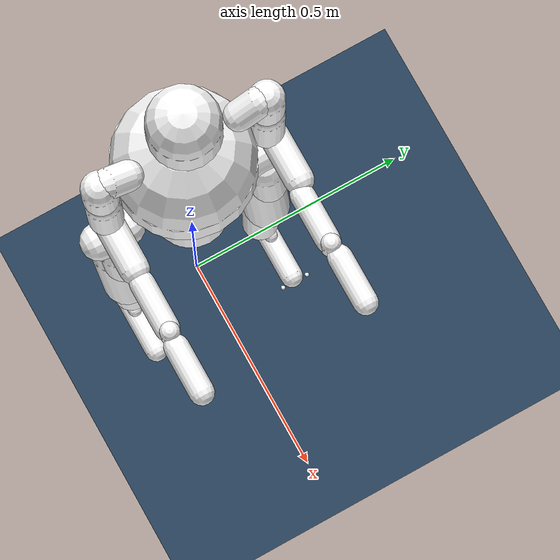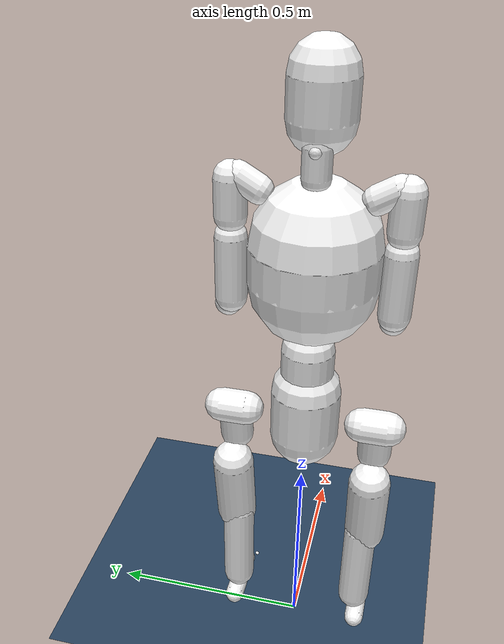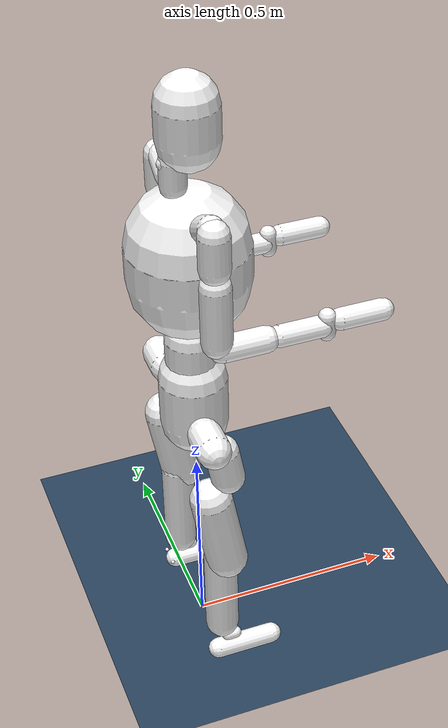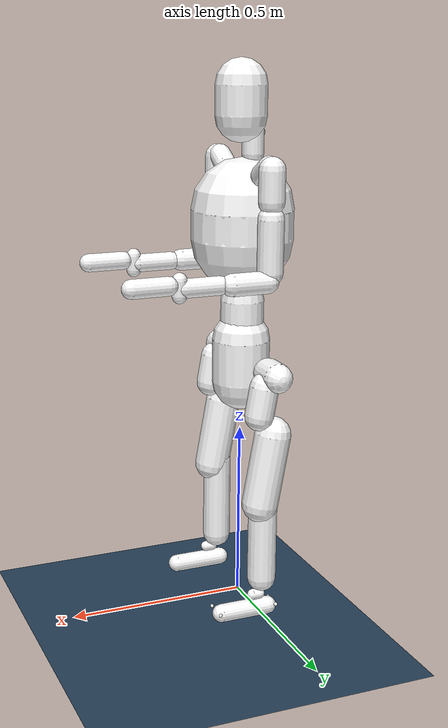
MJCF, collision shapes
<mujoco model="Taks_T1 scene">
  <include file="Taks_T1.xml"/>

  <statistic center="0 0 0.5" extent="2.0"/>

  <visual>
    <headlight diffuse="0.6 0.6 0.6" ambient="0.3 0.3 0.3" specular="0 0 0"/>
    <rgba haze="0.15 0.25 0.35 1"/>
    <global azimuth="-130" elevation="-20"/>
  </visual>

  <asset>
    <texture type="skybox" builtin="gradient" rgb1="0.3 0.5 0.7" rgb2="0 0 0" width="512" height="3072"/>
    <texture type="2d" name="groundplane" builtin="checker" mark="edge" rgb1="0.2 0.3 0.4" rgb2="0.1 0.2 0.3"
      markrgb="0.8 0.8 0.8" width="300" height="300"/>
    <material name="groundplane" texture="groundplane" texuniform="true" texrepeat="5 5" reflectance="0.2"/>
  </asset>

  <worldbody>
    <light pos="0 0 1.5" dir="0 0 -1" directional="true"/>
    <geom name="floor" size="0 0 0.05" type="plane" material="groundplane"/>
  </worldbody>
</mujoco>

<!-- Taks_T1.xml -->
<mujoco model="Taks_T1">
  <compiler angle="radian" meshdir="meshes" />

  <default>
    <default class="torso_motor">
      <joint damping="0.05" armature="0.01" frictionloss="0.2"/>
    </default>
    <default class="leg_motor">
      <joint damping="0.05" armature="0.01" frictionloss="0.2"/>
    </default>
    <default class="ankle_motor">
      <joint damping="0.05" armature="0.01" frictionloss="0.2"/>
    </default>
    <default class="arm_motor">
      <joint damping="0.05" armature="0.01" frictionloss="0.2"/>
    </default>
    <default class="wrist_motor">
      <joint damping="0.05" armature="0.01" frictionloss="0.1"/>
    </default>
    <default class="neck_motor">
      <joint damping="0.02" armature="0.005" frictionloss="0.05"/>
    </default>
  </default>

  <asset>
    <mesh name="pelvis" file="pelvis.STL" />
    <mesh name="left_hip_pitch_link" file="left_hip_pitch_link.STL" />
    <mesh name="left_hip_roll_link" file="left_hip_roll_link.STL" />
    <mesh name="left_hip_yaw_link" file="left_hip_yaw_link.STL" />
    <mesh name="left_knee_link" file="left_knee_link.STL" />
    <mesh name="left_ankle_pitch_link" file="left_ankle_pitch_link.STL" />
    <mesh name="left_ankle_roll_link" file="left_ankle_roll_link.STL" />
    <mesh name="right_hip_pitch_link" file="right_hip_pitch_link.STL" />
    <mesh name="right_hip_roll_link" file="right_hip_roll_link.STL" />
    <mesh name="right_hip_yaw_link" file="right_hip_yaw_link.STL" />
    <mesh name="right_knee_link" file="right_knee_link.STL" />
    <mesh name="right_ankle_pitch_link" file="right_ankle_pitch_link.STL" />
    <mesh name="right_ankle_roll_link" file="right_ankle_roll_link.STL" />
    <mesh name="waist_yaw_link" file="waist_yaw_link.STL" />
    <mesh name="waist_roll_link" file="waist_roll_link.STL" />
    <mesh name="waist_pitch_link" file="waist_pitch_link.STL" />
    <mesh name="left_shoulder_pitch_link" file="left_shoulder_pitch_link.STL" />
    <mesh name="left_shoulder_roll_link" file="left_shoulder_roll_link.STL" />
    <mesh name="left_shoulder_yaw_link" file="left_shoulder_yaw_link.STL" />
    <mesh name="left_elbow_link" file="left_elbow_link.STL" />
    <mesh name="left_wrist_roll_link" file="left_wrist_roll_link.STL" />
    <mesh name="left_wrist_yaw_link" file="left_wrist_yaw_link.STL" />
    <mesh name="left_wrist_pitch_link" file="left_wrist_pitch_link.STL" />
    <mesh name="right_shoulder_pitch_link" file="right_shoulder_pitch_link.STL" />
    <mesh name="right_shoulder_roll_link" file="right_shoulder_roll_link.STL" />
    <mesh name="right_shoulder_yaw_link" file="right_shoulder_yaw_link.STL" />
    <mesh name="right_elbow_link" file="right_elbow_link.STL" />
    <mesh name="right_wrist_roll_link" file="right_wrist_roll_link.STL" />
    <mesh name="right_wrist_yaw_link" file="right_wrist_yaw_link.STL" />
    <mesh name="right_wrist_pitch_link" file="right_wrist_pitch_link.STL" />
    <mesh name="neck_yaw_link" file="neck_yaw_link.STL" />
    <mesh name="neck_roll_link" file="neck_roll_link.STL" />
    <mesh name="neck_pitch_link" file="neck_pitch_link.STL" />
  </asset>

  <worldbody>
    <body name="pelvis" pos="0 0 0.75">
      <site name="imu" size="0.01" pos="0.0 0.0 0.0" />
      <inertial pos="0.0 0.0 -0.05192" mass="3.2"
        diaginertia="0.0161067 0.0106667 0.0200852" />
      <joint name="floating_base_joint" type="free" limited="false" actuatorfrclimited="false" />
      <geom type="mesh" contype="0" conaffinity="0" group="1" density="0" rgba="1.0 1.0 1.0 1"
        mesh="pelvis" />
      <!-- Pelvis capsule collision (contype=2 for torso group, conaffinity excludes self) -->
      <geom name="pelvis_collision" type="capsule" size="0.08 0.06" pos="0 0 -0.05" rgba="1.0 1.0 1.0 0.3" group="3" contype="2" conaffinity="29" />

      <!-- Left Leg -->
      <body name="left_hip_pitch_link" pos="0.0 0.115 -0.0523">
        <inertial pos="-0.02022 0.04885 -0.00359" mass="0.685"
          diaginertia="0.000776333 0.000570833 0.000936167" />
        <joint name="left_hip_pitch_joint" pos="0 0 0" axis="0 1 0" range="-2.5307 2.8798"
          actuatorfrcrange="-120 120" class="leg_motor" />
        <geom type="mesh" contype="0" conaffinity="0" group="1" density="0" rgba="1.0 1.0 1.0 1"
          mesh="left_hip_pitch_link" />
        <!-- Left hip pitch capsule collision (contype=1 for left leg) -->
        <geom name="left_hip_pitch_collision" type="capsule" size="0.04 0.03" pos="-0.02 0.05 0" quat="0.707 0.707 0 0" rgba="1.0 1.0 1.0 0.3" group="3" contype="1" conaffinity="30" />

        <body name="left_hip_roll_link" pos="0.007945 0.053348 0.001351" quat="0.996195 0 -0.0871557 0">
          <inertial pos="-0.00668 -0.00027 -0.0695" mass="0.93"
            diaginertia="0.001612 0.001612 0.000992" />
          <joint name="left_hip_roll_joint" pos="0 0 0" axis="1 0 0" range="-0.5236 2.9671"
            actuatorfrcrange="-97 97" class="leg_motor" />
          <geom type="mesh" contype="0" conaffinity="0" group="1" density="0" rgba="1.0 1.0 1.0 1"
            mesh="left_hip_roll_link" />
          <!-- Left hip roll capsule collision (contype=1 for left leg) -->
          <geom name="left_hip_roll_collision" type="capsule" size="0.04 0.04" pos="-0.007 0 -0.07" rgba="1.0 1.0 1.0 0.3" group="3" contype="1" conaffinity="30" />

          <body name="left_hip_yaw_link" pos="-0.008293 0.0 -0.10937">
            <inertial pos="-0.048416 -0.008192 -0.200621" mass="1.74"
              diaginertia="0.014616 0.014616 0.003132" />
            <joint name="left_hip_yaw_joint" pos="0 0 0" axis="0 0 1" range="-2.7576 2.7576"
              actuatorfrcrange="-97 97" class="leg_motor" />
            <geom type="mesh" contype="0" conaffinity="0" group="1" density="0" rgba="1.0 1.0 1.0 1"
              mesh="left_hip_yaw_link" />
            <!-- Left thigh capsule collision (contype=1 for left leg) -->
            <geom name="left_thigh_collision" type="capsule" size="0.05 0.1" pos="-0.05 0 -0.15" rgba="1.0 1.0 1.0 0.3" group="3" contype="1" conaffinity="30" />

            <body name="left_knee_link" pos="-0.060138 0.016849 -0.23297" quat="0.996195 0 0.0871557 0">
              <inertial pos="0.0 -0.0248 -0.115572" mass="0.63"
                diaginertia="0.004977 0.004977 0.000504" />
              <joint name="left_knee_joint" pos="0 0 0" axis="0 1 0" range="-0.087267 2.8798"
                actuatorfrcrange="-120 120" class="leg_motor" />
              <geom type="mesh" contype="0" conaffinity="0" group="1" density="0" rgba="1.0 1.0 1.0 1"
                mesh="left_knee_link" />
              <!-- Left shin capsule collision (contype=1 for left leg) -->
              <geom name="left_shin_collision" type="capsule" size="0.04 0.12" pos="0 -0.025 -0.12" rgba="1.0 1.0 1.0 0.3" group="3" contype="1" conaffinity="30" />

              <body name="left_ankle_pitch_link" pos="0.0 -0.015197 -0.28503">
                <inertial pos="0.019984 0.0 0.0" mass="0.001837"
                  diaginertia="1.6533e-07 1.6533e-07 1.6533e-07" />
                <joint name="left_ankle_pitch_joint" pos="0 0 0" axis="0 1 0"
                  range="-0.87267 0.5236" actuatorfrcrange="-27 27" class="ankle_motor" />
                <geom type="mesh" contype="0" conaffinity="0" group="1" density="0" rgba="1.0 1.0 1.0 1"
                  mesh="left_ankle_pitch_link" />
                <!-- Left ankle pitch capsule collision (contype=1 for left leg) -->
                <geom name="left_ankle_pitch_collision" type="capsule" size="0.015 0.01" pos="0.02 0 0" quat="0.707 0 0.707 0" rgba="1.0 1.0 1.0 0.3" group="3" contype="1" conaffinity="30" />

                <body name="left_ankle_roll_link" pos="0.02 0.0 0.0">
                  <inertial pos="0.025052 -0.005381 -0.04" mass="0.56"
                    diaginertia="0.000415333 0.00146533 0.00164733" />
                  <joint name="left_ankle_roll_joint" pos="0 0 0" axis="1 0 0"
                    range="-0.2618 0.2618" actuatorfrcrange="-27 27" class="ankle_motor" />
                  <geom type="mesh" contype="0" conaffinity="0" group="1" density="0" rgba="1.0 1.0 1.0 1"
                    mesh="left_ankle_roll_link" />
                  <geom size="0.005" pos="-0.05 0.025 -0.03" rgba="1.0 1.0 1.0 1" contype="0" conaffinity="0" />
                  <geom size="0.005" pos="-0.05 -0.025 -0.03" rgba="1.0 1.0 1.0 1" contype="0" conaffinity="0" />
                  <geom size="0.005" pos="0.12 0.03 -0.03" rgba="1.0 1.0 1.0 1" contype="0" conaffinity="0" />
                  <geom size="0.005" pos="0.12 -0.03 -0.03" rgba="1.0 1.0 1.0 1" contype="0" conaffinity="0" />
                  <!-- Left foot capsule collision (contype=1 for left leg) -->
                  <geom name="left_foot_collision" type="capsule" size="0.025 0.07" pos="0.035 0 -0.04" quat="0.707 0 0.707 0" rgba="1.0 1.0 1.0 0.3" group="3" contype="1" conaffinity="30" />
                </body>
              </body>
            </body>
          </body>
        </body>
      </body>

      <!-- Right Leg -->
      <body name="right_hip_pitch_link" pos="0.0 -0.115 -0.0523">
        <inertial pos="-0.02022 -0.04886 -0.00359" mass="0.685"
          diaginertia="0.000776333 0.000570833 0.000936167" />
        <joint name="right_hip_pitch_joint" pos="0 0 0" axis="0 1 0" range="-2.5307 2.8798"
          actuatorfrcrange="-120 120" class="leg_motor" />
        <geom type="mesh" contype="0" conaffinity="0" group="1" density="0" rgba="1.0 1.0 1.0 1"
          mesh="right_hip_pitch_link" />
        <!-- Right hip pitch capsule collision (contype=32 for right leg) -->
        <geom name="right_hip_pitch_collision" type="capsule" size="0.04 0.03" pos="-0.02 -0.05 0" quat="0.707 0.707 0 0" rgba="1.0 1.0 1.0 0.3" group="3" contype="32" conaffinity="31" />

        <body name="right_hip_roll_link" pos="0.007945 -0.053348 0.001351" quat="0.996195 0 -0.0871557 0">
          <inertial pos="-0.00668 0.00027 -0.0695" mass="0.93"
            diaginertia="0.001612 0.001612 0.000992" />
          <joint name="right_hip_roll_joint" pos="0 0 0" axis="1 0 0" range="-2.9671 0.5236"
            actuatorfrcrange="-97 97" class="leg_motor" />
          <geom type="mesh" contype="0" conaffinity="0" group="1" density="0" rgba="1.0 1.0 1.0 1"
            mesh="right_hip_roll_link" />
          <!-- Right hip roll capsule collision (contype=32 for right leg) -->
          <geom name="right_hip_roll_collision" type="capsule" size="0.04 0.04" pos="-0.007 0 -0.07" rgba="1.0 1.0 1.0 0.3" group="3" contype="32" conaffinity="31" />

          <body name="right_hip_yaw_link" pos="-0.008293 0.0 -0.10937">
            <inertial pos="-0.04842 0.008194 -0.200625" mass="1.74"
              diaginertia="0.014616 0.014616 0.003132" />
            <joint name="right_hip_yaw_joint" pos="0 0 0" axis="0 0 1" range="-2.7576 2.7576"
              actuatorfrcrange="-97 97" class="leg_motor" />
            <geom type="mesh" contype="0" conaffinity="0" group="1" density="0" rgba="1.0 1.0 1.0 1"
              mesh="right_hip_yaw_link" />
            <!-- Right thigh capsule collision (contype=32 for right leg) -->
            <geom name="right_thigh_collision" type="capsule" size="0.05 0.1" pos="-0.05 0 -0.15" rgba="1.0 1.0 1.0 0.3" group="3" contype="32" conaffinity="31" />

            <body name="right_knee_link" pos="-0.060138 -0.016849 -0.23297" quat="0.996195 0 0.0871557 0">
              <inertial pos="0.0 0.0248 -0.115573" mass="0.63"
                diaginertia="0.004977 0.004977 0.000504" />
              <joint name="right_knee_joint" pos="0 0 0" axis="0 1 0" range="-0.087267 2.8798"
                actuatorfrcrange="-120 120" class="leg_motor" />
              <geom type="mesh" contype="0" conaffinity="0" group="1" density="0" rgba="1.0 1.0 1.0 1"
                mesh="right_knee_link" />
              <!-- Right shin capsule collision (contype=32 for right leg) -->
              <geom name="right_shin_collision" type="capsule" size="0.04 0.12" pos="0 0.025 -0.12" rgba="1.0 1.0 1.0 0.3" group="3" contype="32" conaffinity="31" />

              <body name="right_ankle_pitch_link" pos="0.0 0.015197 -0.28503">
                <inertial pos="0.019984 0.0 0.0" mass="0.001837"
                  diaginertia="1.6533e-07 1.6533e-07 1.6533e-07" />
                <joint name="right_ankle_pitch_joint" pos="0 0 0" axis="0 1 0"
                  range="-0.87267 0.5236" actuatorfrcrange="-27 27" class="ankle_motor" />
                <geom type="mesh" contype="0" conaffinity="0" group="1" density="0" rgba="1.0 1.0 1.0 1"
                  mesh="right_ankle_pitch_link" />
                <!-- Right ankle pitch capsule collision (contype=32 for right leg) -->
                <geom name="right_ankle_pitch_collision" type="capsule" size="0.015 0.01" pos="0.02 0 0" quat="0.707 0 0.707 0" rgba="1.0 1.0 1.0 0.3" group="3" contype="32" conaffinity="31" />

                <body name="right_ankle_roll_link" pos="0.02 0.0 0.0">
                  <inertial pos="0.025052 0.005381 -0.04" mass="0.56"
                    diaginertia="0.000415333 0.00146533 0.00164733" />
                  <joint name="right_ankle_roll_joint" pos="0 0 0" axis="1 0 0"
                    range="-0.2618 0.2618" actuatorfrcrange="-27 27" class="ankle_motor" />
                  <geom type="mesh" contype="0" conaffinity="0" group="1" density="0" rgba="1.0 1.0 1.0 1"
                    mesh="right_ankle_roll_link" />
                  <!-- Right foot capsule collision (contype=32 for right leg) -->
                  <geom name="right_foot_collision" type="capsule" size="0.025 0.07" pos="0.035 0 -0.04" quat="0.707 0 0.707 0" rgba="1.0 1.0 1.0 0.3" group="3" contype="32" conaffinity="31" />
                </body>
              </body>
            </body>
          </body>
        </body>
      </body>

      <!-- Upper Body -->
      <body name="waist_yaw_link" pos="0.0 0.0 0.0">
        <inertial pos="0.000694 3.7e-05 0.023535" mass="0.79"
          diaginertia="0.00073075 0.00073075 0.0009875" />
        <joint name="waist_yaw_joint" pos="0 0 0" axis="0 0 1" range="-2.618 2.618"
          actuatorfrcrange="-97 97" class="torso_motor" />
        <geom type="mesh" contype="0" conaffinity="0" group="1" density="0" rgba="1.0 1.0 1.0 1"
          mesh="waist_yaw_link" />
        <!-- Waist yaw capsule collision (contype=2 for torso) -->
        <geom name="waist_yaw_collision" type="capsule" size="0.06 0.02" pos="0 0 0.02" rgba="1.0 1.0 1.0 0.3" group="3" contype="2" conaffinity="61" />

        <body name="waist_roll_link" pos="0.03813 3.7e-05 0.050906">
          <inertial pos="-0.03647 0.001918 0.039525" mass="1.56"
            diaginertia="0.0056 0.0056 0.0026" />
          <joint name="waist_roll_joint" pos="0 0 0" axis="1 0 0" range="-0.52 0.52"
            actuatorfrcrange="-97 97" class="torso_motor" />
          <geom type="mesh" contype="0" conaffinity="0" group="1" density="0" rgba="1.0 1.0 1.0 1"
            mesh="waist_roll_link" />
          <!-- Waist roll capsule collision (contype=2 for torso) -->
          <geom name="waist_roll_collision" type="capsule" size="0.06 0.03" pos="-0.04 0 0.04" rgba="1.0 1.0 1.0 0.3" group="3" contype="2" conaffinity="61" />

          <body name="torso_link" pos="-0.03813 -0.032925 0.079963">
            <inertial pos="-0.000232 0.028443 0.216034" mass="2.01"
              diaginertia="0.025875 0.0192688 0.0148437" />
            <joint name="waist_pitch_joint" pos="0 0 0" axis="0 1 0" range="-0.52 0.52"
              actuatorfrcrange="-97 97" class="torso_motor" />
            <geom type="mesh" contype="0" conaffinity="0" group="1" density="0" rgba="1.0 1.0 1.0 1"
              mesh="waist_pitch_link" />
            <!-- Torso capsule collision (contype=2 for torso) -->
            <geom name="torso_collision" type="capsule" size="0.14 0.04" pos="0 0.03 0.2" rgba="1.0 1.0 1.0 0.3" group="3" contype="2" conaffinity="61" />

            <!-- Left Arm -->
            <body name="left_shoulder_pitch_link" pos="0.0 0.13582 0.33654"
              quat="0.9659258 0.2588190 0 0">
              <inertial pos="-0.003513 0.038593 0.000147" mass="0.24"
                diaginertia="0.000178 0.000122 0.0002" />
              <joint name="left_shoulder_pitch_joint" pos="0 0 0" axis="0 1 0"
                range="-3.0 2.0" actuatorfrcrange="-27 27" class="arm_motor" />
              <geom type="mesh" contype="0" conaffinity="0" group="1" density="0" rgba="1.0 1.0 1.0 1"
                mesh="left_shoulder_pitch_link" />
              <!-- Left shoulder pitch capsule collision (contype=8 for left arm) -->
              <geom name="left_shoulder_pitch_collision" type="capsule" size="0.03 0.025" pos="0 0.04 0" quat="0.707 0.707 0 0" rgba="1.0 1.0 1.0 0.3" group="3" contype="8" conaffinity="55" />

              <body name="left_shoulder_roll_link" pos="0.03476 0.0835 0.000425"
                quat="0.9659258 -0.2588190 0 0">
                <inertial pos="-0.034364 0.004091 -0.054537" mass="0.92"
                  diaginertia="0.00157167 0.00178633 0.000766667" />
                <joint name="left_shoulder_roll_joint" pos="0 0 0" axis="1 0 0"
                  range="-0.2 2.2515" actuatorfrcrange="-27 27" class="arm_motor" />
                <geom type="mesh" contype="0" conaffinity="0" group="1" density="0" rgba="1.0 1.0 1.0 1"
                  mesh="left_shoulder_roll_link" />
                <!-- Left shoulder roll capsule collision (contype=8 for left arm) -->
                <geom name="left_shoulder_roll_collision" type="capsule" size="0.035 0.04" pos="-0.035 0 -0.055" rgba="1.0 1.0 1.0 0.3" group="3" contype="8" conaffinity="55" />

                <body name="left_shoulder_yaw_link" pos="-0.034375 0.0 -0.12">
                  <inertial pos="0.000365 -7.2e-05 -0.086229" mass="0.625"
                    diaginertia="0.0019375 0.0019375 0.0005" />
                  <joint name="left_shoulder_yaw_joint" pos="0 0 0" axis="0 0 1"
                    range="-2.58 2.58" actuatorfrcrange="-27 27" class="arm_motor" />
                  <geom type="mesh" contype="0" conaffinity="0" group="1" density="0" rgba="1.0 1.0 1.0 1"
                    mesh="left_shoulder_yaw_link" />
                  <!-- Left upper arm capsule collision (contype=8 for left arm) -->
                  <geom name="left_upper_arm_collision" type="capsule" size="0.035 0.07" pos="0 0 -0.09" rgba="1.0 1.0 1.0 0.3" group="3" contype="8" conaffinity="55" />

                  <body name="left_elbow_link" pos="0.000364 0.029113 -0.18099">
                    <inertial pos="0.060258 -0.018902 -0.00551" mass="0.552"
                      diaginertia="0.0003381 0.00094645 0.00094645" />
                    <joint name="left_elbow_joint" pos="0 0 0" axis="0 1 0"
                      range="-0.7 1.57" actuatorfrcrange="-27 27" class="arm_motor" />
                    <geom type="mesh" contype="0" conaffinity="0" group="1" density="0" rgba="1.0 1.0 1.0 1"
                      mesh="left_elbow_link" />
                    <!-- Left elbow capsule collision (contype=8 for left arm) -->
                    <geom name="left_elbow_collision" type="capsule" size="0.03 0.05" pos="0.06 -0.02 0" quat="0.707 0 0.707 0" rgba="1.0 1.0 1.0 0.3" group="3" contype="8" conaffinity="55" />

                    <body name="left_wrist_roll_link" pos="0.13 -0.029125 0.0">
                      <inertial pos="0.059349 0.0 0.000843" mass="0.508"
                        diaginertia="0.0002286 0.0007239 0.0007239" />
                      <joint name="left_wrist_roll_joint" pos="0 0 0" axis="1 0 0"
                        range="-2.67 2.67" actuatorfrcrange="-7 7" class="wrist_motor" />
                      <geom type="mesh" contype="0" conaffinity="0" group="1" density="0" rgba="1.0 1.0 1.0 1"
                        mesh="left_wrist_roll_link" />
                      <!-- Left forearm capsule collision (contype=8 for left arm) -->
                      <geom name="left_forearm_collision" type="capsule" size="0.025 0.05" pos="0.06 0 0" quat="0.707 0 0.707 0" rgba="1.0 1.0 1.0 0.3" group="3" contype="8" conaffinity="55" />

                      <body name="left_wrist_yaw_link" pos="0.121 0.0 -0.0333">
                        <inertial pos="0.0 0.001805 0.034219" mass="0.37"
                          diaginertia="0.000228167 0.000228167 0.000154167" />
                        <joint name="left_wrist_yaw_joint" pos="0 0 0" axis="0 0 1"
                          range="-0.9 0.9" actuatorfrcrange="-7 7" class="wrist_motor" />
                        <geom type="mesh" contype="0" conaffinity="0" group="1" density="0" rgba="1.0 1.0 1.0 1"
                          mesh="left_wrist_yaw_link" />
                        <!-- Left wrist yaw capsule collision (contype=8 for left arm) -->
                        <geom name="left_wrist_yaw_collision" type="capsule" size="0.02 0.02" pos="0 0 0.035" rgba="1.0 1.0 1.0 0.3" group="3" contype="8" conaffinity="55" />

                        <body name="left_wrist_pitch_link" pos="0.0 0.022502 0.033299">
                          <inertial pos="0.076857 -0.017165 0.011311" mass="0.28"
                            diaginertia="0.000121333 0.000270667 0.000317333" />
                          <joint name="left_wrist_pitch_joint" pos="0 0 0" axis="0 1 0"
                            range="-0.9 0.9" actuatorfrcrange="-7 7" class="wrist_motor" />
                          <geom type="mesh" contype="0" conaffinity="0" group="1" density="0" rgba="1.0 1.0 1.0 1"
                            mesh="left_wrist_pitch_link" />
                          <!-- Left hand capsule collision (contype=8 for left arm) -->
                          <geom name="left_hand_collision" type="capsule" size="0.025 0.05" pos="0.08 -0.02 0.01" quat="0.707 0 0.707 0" rgba="1.0 1.0 1.0 0.3" group="3" contype="8" conaffinity="55" />
                        </body>
                      </body>
                    </body>
                  </body>
                </body>
              </body>
            </body>

            <!-- Right Arm -->
            <body name="right_shoulder_pitch_link" pos="0.0 -0.069974 0.33654"
              quat="0.9659258 -0.2588190 0 0">
              <inertial pos="-0.003513 -0.038593 0.000147" mass="0.24"
                diaginertia="0.000178 0.000122 0.0002" />
              <joint name="right_shoulder_pitch_joint" pos="0 0 0" axis="0 1 0"
                range="-2.0 2.0" actuatorfrcrange="-27 27" class="arm_motor" />
              <geom type="mesh" contype="0" conaffinity="0" group="1" density="0" rgba="1.0 1.0 1.0 1"
                mesh="right_shoulder_pitch_link" />
              <!-- Right shoulder pitch capsule collision (contype=16 for right arm) -->
              <geom name="right_shoulder_pitch_collision" type="capsule" size="0.03 0.025" pos="0 -0.04 0" quat="0.707 0.707 0 0" rgba="1.0 1.0 1.0 0.3" group="3" contype="16" conaffinity="47" />

              <body name="right_shoulder_roll_link" pos="0.02776 -0.0835 0.000425"
                quat="0.9659258 0.2588190 0 0">
                <inertial pos="-0.027363 -0.004095 -0.054537" mass="0.92"
                  diaginertia="0.00157167 0.00178633 0.000766667" />
                <joint name="right_shoulder_roll_joint" pos="0 0 0" axis="1 0 0"
                  range="-2.2515 0.2" actuatorfrcrange="-27 27" class="arm_motor" />
                <geom type="mesh" contype="0" conaffinity="0" group="1" density="0" rgba="1.0 1.0 1.0 1"
                  mesh="right_shoulder_roll_link" />
                <!-- Right shoulder roll capsule collision (contype=16 for right arm) -->
                <geom name="right_shoulder_roll_collision" type="capsule" size="0.035 0.04" pos="-0.028 0 -0.055" rgba="1.0 1.0 1.0 0.3" group="3" contype="16" conaffinity="47" />

                <body name="right_shoulder_yaw_link" pos="-0.027375 0.0 -0.12">
                  <inertial pos="0.000364 6.6e-05 -0.08623" mass="0.625"
                    diaginertia="0.0019375 0.0019375 0.0005" />
                  <joint name="right_shoulder_yaw_joint" pos="0 0 0" axis="0 0 1"
                    range="-2.58 2.58" actuatorfrcrange="-27 27" class="arm_motor" />
                  <geom type="mesh" contype="0" conaffinity="0" group="1" density="0" rgba="1.0 1.0 1.0 1"
                    mesh="right_shoulder_yaw_link" />
                  <!-- Right upper arm capsule collision (contype=16 for right arm) -->
                  <geom name="right_upper_arm_collision" type="capsule" size="0.035 0.07" pos="0 0 -0.09" rgba="1.0 1.0 1.0 0.3" group="3" contype="16" conaffinity="47" />

                  <body name="right_elbow_link" pos="0.000364 0.027375 -0.18099">
                    <inertial pos="0.060603 -0.027325 -0.005367" mass="0.552"
                      diaginertia="0.0003381 0.00094645 0.00094645" />
                    <joint name="right_elbow_joint" pos="0 0 0" axis="0 1 0"
                      range="-0.7 1.57" actuatorfrcrange="-27 27" class="arm_motor" />
                    <geom type="mesh" contype="0" conaffinity="0" group="1" density="0" rgba="1.0 1.0 1.0 1"
                      mesh="right_elbow_link" />
                    <!-- Right elbow capsule collision (contype=16 for right arm) -->
                    <geom name="right_elbow_collision" type="capsule" size="0.03 0.05" pos="0.06 -0.027 0" quat="0.707 0 0.707 0" rgba="1.0 1.0 1.0 0.3" group="3" contype="16" conaffinity="47" />

                    <body name="right_wrist_roll_link" pos="0.13 -0.027375 0.0">
                      <inertial pos="0.059331 0.0 0.000847" mass="0.508"
                        diaginertia="0.0002286 0.0007239 0.0007239" />
                      <joint name="right_wrist_roll_joint" pos="0 0 0" axis="1 0 0"
                        range="-2.67 2.67" actuatorfrcrange="-7 7" class="wrist_motor" />
                      <geom type="mesh" contype="0" conaffinity="0" group="1" density="0" rgba="1.0 1.0 1.0 1"
                        mesh="right_wrist_roll_link" />
                      <!-- Right forearm capsule collision (contype=16 for right arm) -->
                      <geom name="right_forearm_collision" type="capsule" size="0.025 0.05" pos="0.06 0 0" quat="0.707 0 0.707 0" rgba="1.0 1.0 1.0 0.3" group="3" contype="16" conaffinity="47" />

                      <body name="right_wrist_yaw_link" pos="0.121 0.0 -0.0333">
                        <inertial pos="0.0 -0.001803 0.034219" mass="0.37"
                          diaginertia="0.000228167 0.000228167 0.000154167" />
                        <joint name="right_wrist_yaw_joint" pos="0 0 0" axis="0 0 1"
                          range="-0.9 0.9" actuatorfrcrange="-7 7" class="wrist_motor" />
                        <geom type="mesh" contype="0" conaffinity="0" group="1" density="0" rgba="1.0 1.0 1.0 1"
                          mesh="right_wrist_yaw_link" />
                        <!-- Right wrist yaw capsule collision (contype=16 for right arm) -->
                        <geom name="right_wrist_yaw_collision" type="capsule" size="0.02 0.02" pos="0 0 0.035" rgba="1.0 1.0 1.0 0.3" group="3" contype="16" conaffinity="47" />

                        <body name="right_wrist_pitch_link" pos="0.0 -0.0225 0.0333">
                          <inertial pos="0.076858 0.017168 0.01131" mass="0.28"
                            diaginertia="0.000121333 0.000270667 0.000317333" />
                          <joint name="right_wrist_pitch_joint" pos="0 0 0" axis="0 1 0"
                            range="-0.9 0.9" actuatorfrcrange="-7 7" class="wrist_motor" />
                          <geom type="mesh" contype="0" conaffinity="0" group="1" density="0" rgba="1.0 1.0 1.0 1"
                            mesh="right_wrist_pitch_link" />
                          <!-- Right hand capsule collision (contype=16 for right arm) -->
                          <geom name="right_hand_collision" type="capsule" size="0.025 0.05" pos="0.08 0.02 0.01" quat="0.707 0 0.707 0" rgba="1.0 1.0 1.0 0.3" group="3" contype="16" conaffinity="47" />
                        </body>
                      </body>
                    </body>
                  </body>
                </body>
              </body>
            </body>

            <!-- Head Mocap (virtual body for tracking) -->
            <body name="head_mocap" pos="0.0 0.032906 0.5">
              <inertial pos="0 0 0" mass="0.001" diaginertia="1e-9 1e-9 1e-9" />
            </body>

            <!-- Neck -->
            <body name="neck_yaw_link" pos="0.0 0.032906 0.37165" quat="1 3.2e-05 0 0">
              <inertial pos="-0.026005 0.0 0.044508" mass="0.4"
                diaginertia="0.000483333 0.000483333 0.000426667" />
              <joint name="neck_yaw_joint" pos="0 0 0" axis="0 0 1" range="-1.57 1.57"
                actuatorfrcrange="-3 3" class="neck_motor" />
              <geom type="mesh" contype="0" conaffinity="0" group="1" density="0" rgba="1.0 1.0 1.0 1"
                mesh="neck_yaw_link" />
              <!-- Neck yaw capsule collision (contype=4 for head/neck) -->
              <geom name="neck_yaw_collision" type="capsule" size="0.03 0.03" pos="-0.026 0 0.045" rgba="1.0 1.0 1.0 0.3" group="3" contype="4" conaffinity="59" />

              <body name="neck_roll_link" pos="-0.0719 0.0 0.0708">
                <inertial pos="0.05706 -0.000635 0.0" mass="0.026"
                  diaginertia="1.04e-05 1.04e-05 5.2e-06" />
                <joint name="neck_roll_joint" pos="0 0 0" axis="1 0 0" range="-0.873 0.873"
                  actuatorfrcrange="-3 3" class="neck_motor" />
                <geom type="mesh" contype="0" conaffinity="0" group="1" density="0" rgba="1.0 1.0 1.0 1"
                  mesh="neck_roll_link" />
                <!-- Neck roll capsule collision (contype=4 for head/neck) -->
                <geom name="neck_roll_collision" type="capsule" size="0.015 0.03" pos="0.057 0 0" quat="0.707 0 0.707 0" rgba="1.0 1.0 1.0 0.3" group="3" contype="4" conaffinity="59" />

                <body name="neck_pitch_link" pos="0.0719 0.02095 0.0">
                  <inertial pos="0.009314 -0.020599 0.085269" mass="0.6"
                    diaginertia="0.001845 0.001845 0.00144" />
                  <joint name="neck_pitch_joint" pos="0 0 0" axis="0 1 0" range="-0.873 0.873"
                    actuatorfrcrange="-3 3" class="neck_motor" />
                  <geom type="mesh" contype="0" conaffinity="0" group="1" density="0" rgba="1.0 1.0 1.0 1"
                    mesh="neck_pitch_link" />
                  <!-- Head capsule collision (contype=4 for head/neck) -->
                  <geom name="head_collision" type="capsule" size="0.07 0.04" pos="0.01 -0.02 0.085" rgba="1.0 1.0 1.0 0.3" group="3" contype="4" conaffinity="59" />
                </body>
              </body>
            </body>
          </body>
        </body>
      </body>
    </body>
  </worldbody>

  <!-- Actuators按训练顺序排列 (32 DOF) - 与IO descriptor一致 -->
  <actuator>
    <!-- 0: left_hip_pitch_joint -->
    <motor name="left_hip_pitch" joint="left_hip_pitch_joint" ctrlrange="-120 120" />
    <!-- 1: right_hip_pitch_joint -->
    <motor name="right_hip_pitch" joint="right_hip_pitch_joint" ctrlrange="-120 120" />
    <!-- 2: waist_yaw_joint -->
    <motor name="waist_yaw" joint="waist_yaw_joint" ctrlrange="-97 97" />
    <!-- 3: left_hip_roll_joint -->
    <motor name="left_hip_roll" joint="left_hip_roll_joint" ctrlrange="-97 97" />
    <!-- 4: right_hip_roll_joint -->
    <motor name="right_hip_roll" joint="right_hip_roll_joint" ctrlrange="-97 97" />
    <!-- 5: waist_roll_joint -->
    <motor name="waist_roll" joint="waist_roll_joint" ctrlrange="-97 97" />
    <!-- 6: left_hip_yaw_joint -->
    <motor name="left_hip_yaw" joint="left_hip_yaw_joint" ctrlrange="-97 97" />
    <!-- 7: right_hip_yaw_joint -->
    <motor name="right_hip_yaw" joint="right_hip_yaw_joint" ctrlrange="-97 97" />
    <!-- 8: waist_pitch_joint -->
    <motor name="waist_pitch" joint="waist_pitch_joint" ctrlrange="-97 97" />
    <!-- 9: left_knee_joint -->
    <motor name="left_knee" joint="left_knee_joint" ctrlrange="-120 120" />
    <!-- 10: right_knee_joint -->
    <motor name="right_knee" joint="right_knee_joint" ctrlrange="-120 120" />
    <!-- 11: left_shoulder_pitch_joint -->
    <motor name="left_shoulder_pitch" joint="left_shoulder_pitch_joint" ctrlrange="-27 27" />
    <!-- 12: neck_yaw_joint -->
    <motor name="neck_yaw" joint="neck_yaw_joint" ctrlrange="-3 3" />
    <!-- 13: right_shoulder_pitch_joint -->
    <motor name="right_shoulder_pitch" joint="right_shoulder_pitch_joint" ctrlrange="-27 27" />
    <!-- 14: left_ankle_pitch_joint -->
    <motor name="left_ankle_pitch" joint="left_ankle_pitch_joint" ctrlrange="-27 27" />
    <!-- 15: right_ankle_pitch_joint -->
    <motor name="right_ankle_pitch" joint="right_ankle_pitch_joint" ctrlrange="-27 27" />
    <!-- 16: left_shoulder_roll_joint -->
    <motor name="left_shoulder_roll" joint="left_shoulder_roll_joint" ctrlrange="-27 27" />
    <!-- 17: neck_roll_joint -->
    <motor name="neck_roll" joint="neck_roll_joint" ctrlrange="-3 3" />
    <!-- 18: right_shoulder_roll_joint -->
    <motor name="right_shoulder_roll" joint="right_shoulder_roll_joint" ctrlrange="-27 27" />
    <!-- 19: left_ankle_roll_joint -->
    <motor name="left_ankle_roll" joint="left_ankle_roll_joint" ctrlrange="-27 27" />
    <!-- 20: right_ankle_roll_joint -->
    <motor name="right_ankle_roll" joint="right_ankle_roll_joint" ctrlrange="-27 27" />
    <!-- 21: left_shoulder_yaw_joint -->
    <motor name="left_shoulder_yaw" joint="left_shoulder_yaw_joint" ctrlrange="-27 27" />
    <!-- 22: neck_pitch_joint -->
    <motor name="neck_pitch" joint="neck_pitch_joint" ctrlrange="-3 3" />
    <!-- 23: right_shoulder_yaw_joint -->
    <motor name="right_shoulder_yaw" joint="right_shoulder_yaw_joint" ctrlrange="-27 27" />
    <!-- 24: left_elbow_joint -->
    <motor name="left_elbow" joint="left_elbow_joint" ctrlrange="-27 27" />
    <!-- 25: right_elbow_joint -->
    <motor name="right_elbow" joint="right_elbow_joint" ctrlrange="-27 27" />
    <!-- 26: left_wrist_roll_joint -->
    <motor name="left_wrist_roll" joint="left_wrist_roll_joint" ctrlrange="-7 7" />
    <!-- 27: right_wrist_roll_joint -->
    <motor name="right_wrist_roll" joint="right_wrist_roll_joint" ctrlrange="-7 7" />
    <!-- 28: left_wrist_yaw_joint -->
    <motor name="left_wrist_yaw" joint="left_wrist_yaw_joint" ctrlrange="-7 7" />
    <!-- 29: right_wrist_yaw_joint -->
    <motor name="right_wrist_yaw" joint="right_wrist_yaw_joint" ctrlrange="-7 7" />
    <!-- 30: left_wrist_pitch_joint -->
    <motor name="left_wrist_pitch" joint="left_wrist_pitch_joint" ctrlrange="-7 7" />
    <!-- 31: right_wrist_pitch_joint -->
    <motor name="right_wrist_pitch" joint="right_wrist_pitch_joint" ctrlrange="-7 7" />
  </actuator>

  <!-- Sensors按训练顺序排列 (32 DOF) - 与actuator顺序一致 -->
  <sensor>
    <!-- Joint positions (0-31) -->
    <jointpos name="left_hip_pitch_pos" joint="left_hip_pitch_joint" />
    <jointpos name="right_hip_pitch_pos" joint="right_hip_pitch_joint" />
    <jointpos name="waist_yaw_pos" joint="waist_yaw_joint" />
    <jointpos name="left_hip_roll_pos" joint="left_hip_roll_joint" />
    <jointpos name="right_hip_roll_pos" joint="right_hip_roll_joint" />
    <jointpos name="waist_roll_pos" joint="waist_roll_joint" />
    <jointpos name="left_hip_yaw_pos" joint="left_hip_yaw_joint" />
    <jointpos name="right_hip_yaw_pos" joint="right_hip_yaw_joint" />
    <jointpos name="waist_pitch_pos" joint="waist_pitch_joint" />
    <jointpos name="left_knee_pos" joint="left_knee_joint" />
    <jointpos name="right_knee_pos" joint="right_knee_joint" />
    <jointpos name="left_shoulder_pitch_pos" joint="left_shoulder_pitch_joint" />
    <jointpos name="neck_yaw_pos" joint="neck_yaw_joint" />
    <jointpos name="right_shoulder_pitch_pos" joint="right_shoulder_pitch_joint" />
    <jointpos name="left_ankle_pitch_pos" joint="left_ankle_pitch_joint" />
    <jointpos name="right_ankle_pitch_pos" joint="right_ankle_pitch_joint" />
    <jointpos name="left_shoulder_roll_pos" joint="left_shoulder_roll_joint" />
    <jointpos name="neck_roll_pos" joint="neck_roll_joint" />
    <jointpos name="right_shoulder_roll_pos" joint="right_shoulder_roll_joint" />
    <jointpos name="left_ankle_roll_pos" joint="left_ankle_roll_joint" />
    <jointpos name="right_ankle_roll_pos" joint="right_ankle_roll_joint" />
    <jointpos name="left_shoulder_yaw_pos" joint="left_shoulder_yaw_joint" />
    <jointpos name="neck_pitch_pos" joint="neck_pitch_joint" />
    <jointpos name="right_shoulder_yaw_pos" joint="right_shoulder_yaw_joint" />
    <jointpos name="left_elbow_pos" joint="left_elbow_joint" />
    <jointpos name="right_elbow_pos" joint="right_elbow_joint" />
    <jointpos name="left_wrist_roll_pos" joint="left_wrist_roll_joint" />
    <jointpos name="right_wrist_roll_pos" joint="right_wrist_roll_joint" />
    <jointpos name="left_wrist_yaw_pos" joint="left_wrist_yaw_joint" />
    <jointpos name="right_wrist_yaw_pos" joint="right_wrist_yaw_joint" />
    <jointpos name="left_wrist_pitch_pos" joint="left_wrist_pitch_joint" />
    <jointpos name="right_wrist_pitch_pos" joint="right_wrist_pitch_joint" />

    <!-- Joint velocities (32-63) -->
    <jointvel name="left_hip_pitch_vel" joint="left_hip_pitch_joint" />
    <jointvel name="right_hip_pitch_vel" joint="right_hip_pitch_joint" />
    <jointvel name="waist_yaw_vel" joint="waist_yaw_joint" />
    <jointvel name="left_hip_roll_vel" joint="left_hip_roll_joint" />
    <jointvel name="right_hip_roll_vel" joint="right_hip_roll_joint" />
    <jointvel name="waist_roll_vel" joint="waist_roll_joint" />
    <jointvel name="left_hip_yaw_vel" joint="left_hip_yaw_joint" />
    <jointvel name="right_hip_yaw_vel" joint="right_hip_yaw_joint" />
    <jointvel name="waist_pitch_vel" joint="waist_pitch_joint" />
    <jointvel name="left_knee_vel" joint="left_knee_joint" />
    <jointvel name="right_knee_vel" joint="right_knee_joint" />
    <jointvel name="left_shoulder_pitch_vel" joint="left_shoulder_pitch_joint" />
    <jointvel name="neck_yaw_vel" joint="neck_yaw_joint" />
    <jointvel name="right_shoulder_pitch_vel" joint="right_shoulder_pitch_joint" />
    <jointvel name="left_ankle_pitch_vel" joint="left_ankle_pitch_joint" />
    <jointvel name="right_ankle_pitch_vel" joint="right_ankle_pitch_joint" />
    <jointvel name="left_shoulder_roll_vel" joint="left_shoulder_roll_joint" />
    <jointvel name="neck_roll_vel" joint="neck_roll_joint" />
    <jointvel name="right_shoulder_roll_vel" joint="right_shoulder_roll_joint" />
    <jointvel name="left_ankle_roll_vel" joint="left_ankle_roll_joint" />
    <jointvel name="right_ankle_roll_vel" joint="right_ankle_roll_joint" />
    <jointvel name="left_shoulder_yaw_vel" joint="left_shoulder_yaw_joint" />
    <jointvel name="neck_pitch_vel" joint="neck_pitch_joint" />
    <jointvel name="right_shoulder_yaw_vel" joint="right_shoulder_yaw_joint" />
    <jointvel name="left_elbow_vel" joint="left_elbow_joint" />
    <jointvel name="right_elbow_vel" joint="right_elbow_joint" />
    <jointvel name="left_wrist_roll_vel" joint="left_wrist_roll_joint" />
    <jointvel name="right_wrist_roll_vel" joint="right_wrist_roll_joint" />
    <jointvel name="left_wrist_yaw_vel" joint="left_wrist_yaw_joint" />
    <jointvel name="right_wrist_yaw_vel" joint="right_wrist_yaw_joint" />
    <jointvel name="left_wrist_pitch_vel" joint="left_wrist_pitch_joint" />
    <jointvel name="right_wrist_pitch_vel" joint="right_wrist_pitch_joint" />

    <!-- Joint actuator forces (64-95) -->
    <jointactuatorfrc name="left_hip_pitch_torque" joint="left_hip_pitch_joint" />
    <jointactuatorfrc name="right_hip_pitch_torque" joint="right_hip_pitch_joint" />
    <jointactuatorfrc name="waist_yaw_torque" joint="waist_yaw_joint" />
    <jointactuatorfrc name="left_hip_roll_torque" joint="left_hip_roll_joint" />
    <jointactuatorfrc name="right_hip_roll_torque" joint="right_hip_roll_joint" />
    <jointactuatorfrc name="waist_roll_torque" joint="waist_roll_joint" />
    <jointactuatorfrc name="left_hip_yaw_torque" joint="left_hip_yaw_joint" />
    <jointactuatorfrc name="right_hip_yaw_torque" joint="right_hip_yaw_joint" />
    <jointactuatorfrc name="waist_pitch_torque" joint="waist_pitch_joint" />
    <jointactuatorfrc name="left_knee_torque" joint="left_knee_joint" />
    <jointactuatorfrc name="right_knee_torque" joint="right_knee_joint" />
    <jointactuatorfrc name="left_shoulder_pitch_torque" joint="left_shoulder_pitch_joint" />
    <jointactuatorfrc name="neck_yaw_torque" joint="neck_yaw_joint" />
    <jointactuatorfrc name="right_shoulder_pitch_torque" joint="right_shoulder_pitch_joint" />
    <jointactuatorfrc name="left_ankle_pitch_torque" joint="left_ankle_pitch_joint" />
    <jointactuatorfrc name="right_ankle_pitch_torque" joint="right_ankle_pitch_joint" />
    <jointactuatorfrc name="left_shoulder_roll_torque" joint="left_shoulder_roll_joint" />
    <jointactuatorfrc name="neck_roll_torque" joint="neck_roll_joint" />
    <jointactuatorfrc name="right_shoulder_roll_torque" joint="right_shoulder_roll_joint" />
    <jointactuatorfrc name="left_ankle_roll_torque" joint="left_ankle_roll_joint" />
    <jointactuatorfrc name="right_ankle_roll_torque" joint="right_ankle_roll_joint" />
    <jointactuatorfrc name="left_shoulder_yaw_torque" joint="left_shoulder_yaw_joint" />
    <jointactuatorfrc name="neck_pitch_torque" joint="neck_pitch_joint" />
    <jointactuatorfrc name="right_shoulder_yaw_torque" joint="right_shoulder_yaw_joint" />
    <jointactuatorfrc name="left_elbow_torque" joint="left_elbow_joint" />
    <jointactuatorfrc name="right_elbow_torque" joint="right_elbow_joint" />
    <jointactuatorfrc name="left_wrist_roll_torque" joint="left_wrist_roll_joint" />
    <jointactuatorfrc name="right_wrist_roll_torque" joint="right_wrist_roll_joint" />
    <jointactuatorfrc name="left_wrist_yaw_torque" joint="left_wrist_yaw_joint" />
    <jointactuatorfrc name="right_wrist_yaw_torque" joint="right_wrist_yaw_joint" />
    <jointactuatorfrc name="left_wrist_pitch_torque" joint="left_wrist_pitch_joint" />
    <jointactuatorfrc name="right_wrist_pitch_torque" joint="right_wrist_pitch_joint" />

    <!-- IMU sensors -->
    <framequat name="imu_quat" objtype="site" objname="imu" />
    <gyro name="imu_gyro" site="imu" />
    <accelerometer name="imu_acc" site="imu" />

    <framepos name="frame_pos" objtype="site" objname="imu" />
    <framelinvel name="frame_vel" objtype="site" objname="imu" />
  </sensor>

</mujoco>
